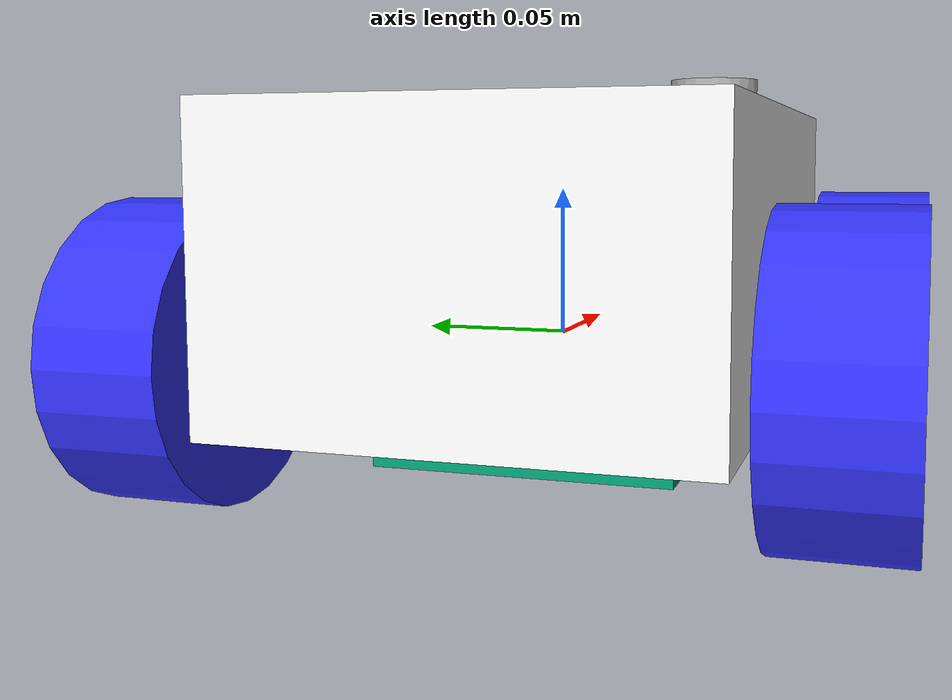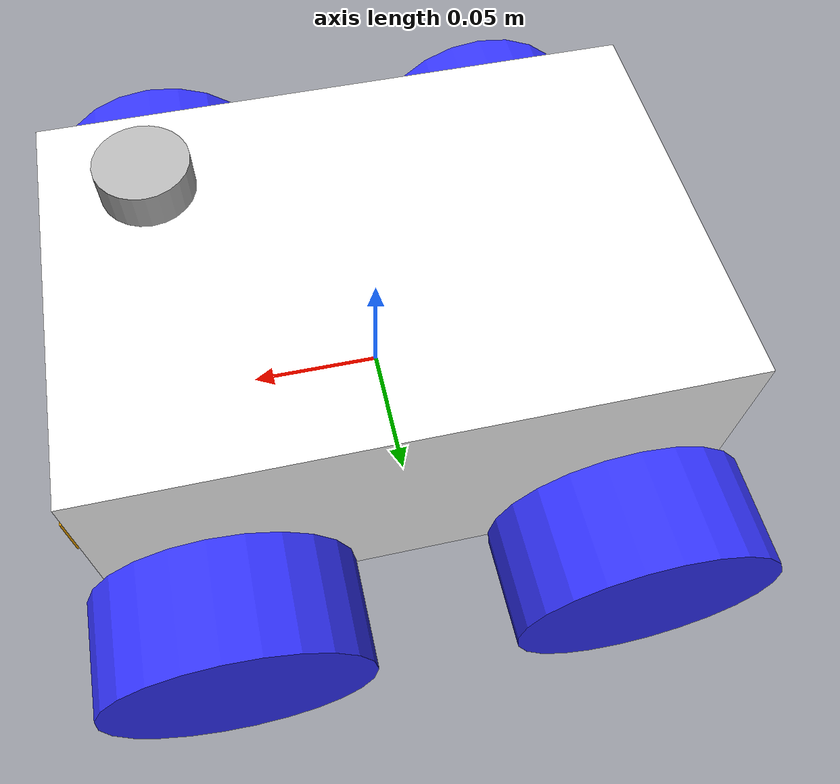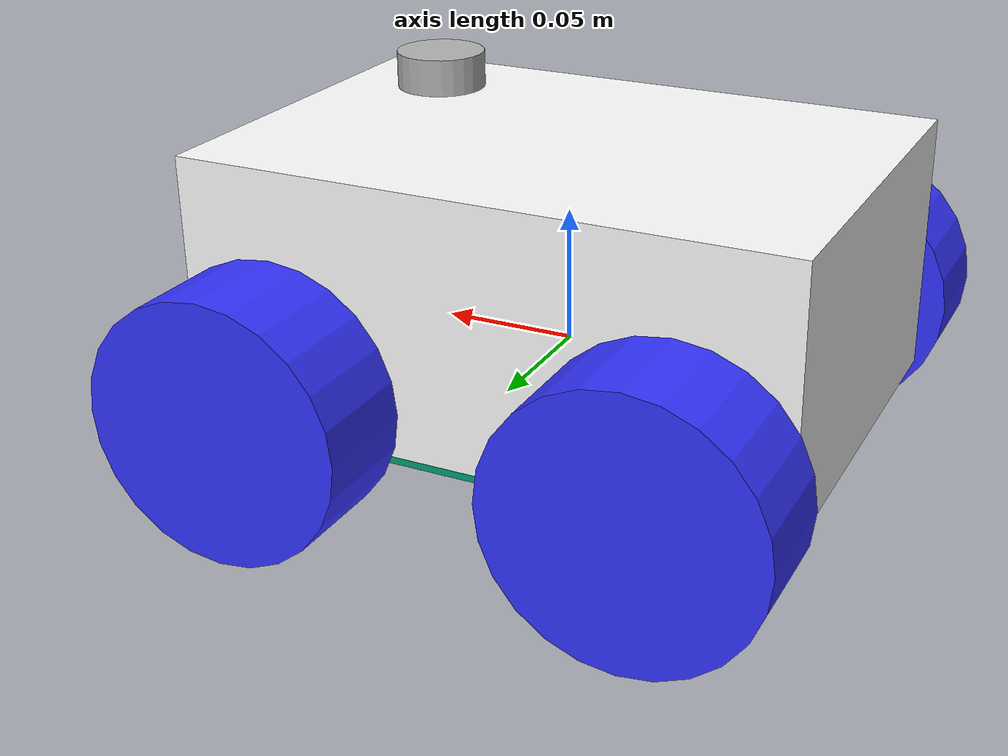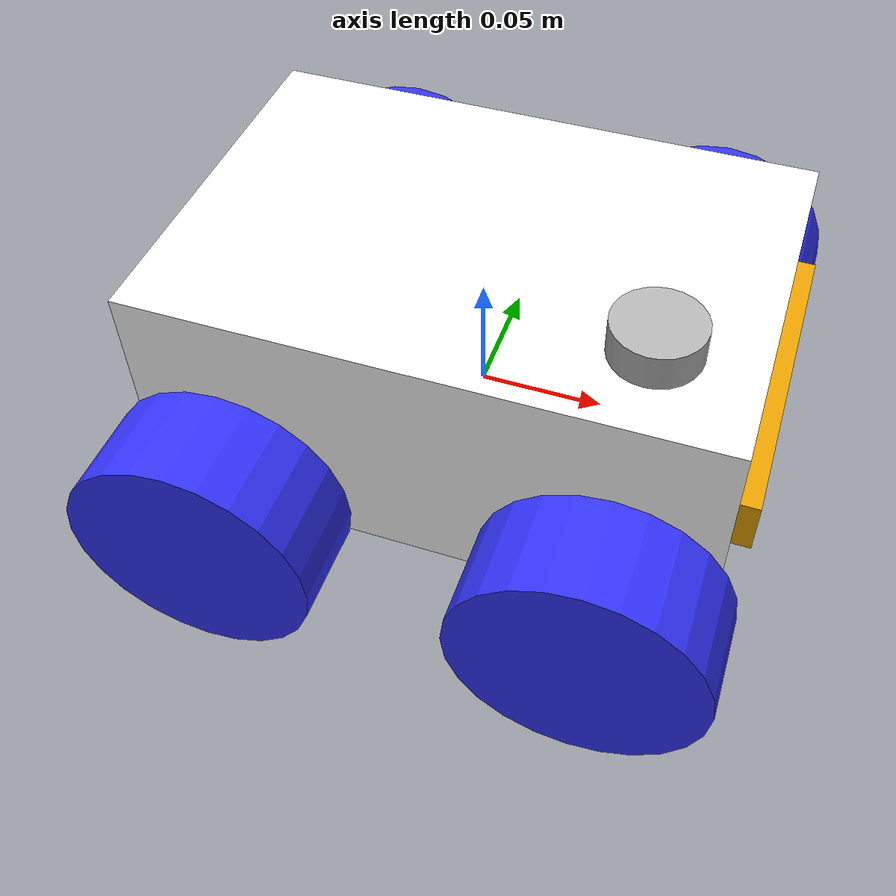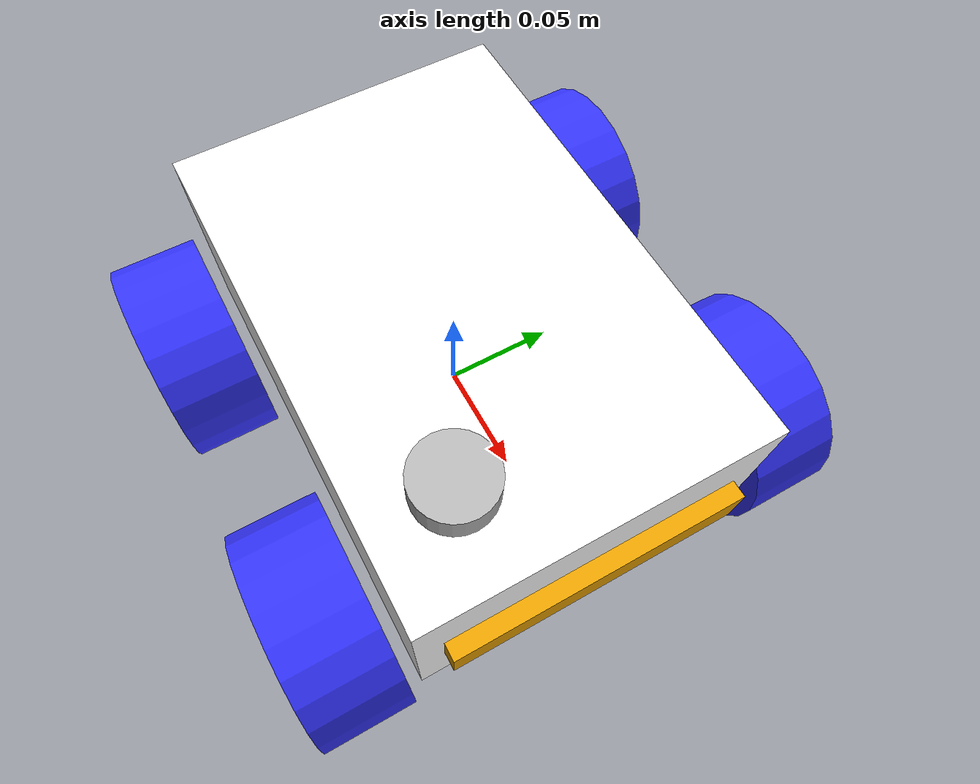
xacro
<?xml version="1.0"?>
<robot xmlns:xacro="http://www.ros.org/wiki/xacro"  name="crab_bot">

    <xacro:include filename="robot_core.xacro" />

    <xacro:arg name="use_ros2_control" default="false"/>
    <xacro:arg name="use_sim" default="true"/>

    <xacro:if value="$(arg use_ros2_control)">
        <xacro:if value="$(arg use_sim)">
            <xacro:include filename="ros2_control.simulation.xacro" />
        </xacro:if>
        <xacro:unless value="$(arg use_sim)">
            <xacro:include filename="ros2_control.hardware.xacro" />
        </xacro:unless>
    </xacro:if>

    <xacro:unless value="$(arg use_ros2_control)">
        <xacro:include filename="gazebo_control.xacro" />
    </xacro:unless>

    <xacro:include filename="lidar.xacro" />
    <xacro:include filename="dept_camera.xacro" />
    <xacro:include filename="imu.xacro" />

</robot>

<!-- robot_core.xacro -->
<robot xmlns:xacro="http://www.ros.org/wiki/xacro">

    <xacro:include filename="inertial_macros.xacro" />

    <xacro:property name="chassis_length" value="0.225"/>
    <xacro:property name="chassis_width" value="0.153"/>
    <xacro:property name="chassis_height" value="0.0975"/>
    <xacro:property name="chassis_mass" value="4.0"/>
    <xacro:property name="wheel_radius" value="0.048"/>
    <xacro:property name="wheel_thickness" value="0.04"/>
    <xacro:property name="wheel_mass" value="0.1"/>
    <xacro:property name="wheel_separation" value="0.205"/>
    <xacro:property name="wheel_offset_x" value="0.073"/>
    <xacro:property name="wheel_offset_y" value="${wheel_separation/2}"/>
    <xacro:property name="chassis_offset_z" value="0.02"/>

    <material name="white">
        <color rgba="1 1 1 1"/>
    </material>

    <material name="orange">
        <color rgba="1 0.3 0.1 1"/>
    </material>

    <material name="blue">
        <color rgba="0.2 0.2 1 1"/>
    </material>

    <material name="black">
        <color rgba="0 0 0 1"/>
    </material>

    <material name="red">
        <color rgba="1 0 0 1"/>
    </material>

    <!-- BASE LINK -->

    <link name="base_link">

    </link>

    <!-- BASE_FOOTPRINT LINK -->

    <joint name="base_footprint_joint" type="fixed">
        <parent link="base_link"/>
        <child link="base_footprint"/>
        <origin xyz="0 0 -0.048" rpy="0 0 0"/>
    </joint>

    <link name="base_footprint">
    </link>

    <!-- CHASSIS LINK -->

    <joint name="chassis_joint" type="fixed">
        <parent link="base_link"/>
        <child link="chassis"/>
        <origin xyz="0 0 ${-chassis_offset_z}"/>
    </joint>

    <link name="chassis">
        <!-- chassis visual -->
        <visual>
            <origin xyz="0 0 ${chassis_height/2}"/>
            <geometry>
                <box size="${chassis_length} ${chassis_width} ${chassis_height}"/>
            </geometry>
            <material name="white"/>
        </visual>
        <!-- chassis interact -->
        <collision>
            <origin xyz="0 0 ${chassis_height/2}"/>
            <geometry>
                <box size="${chassis_length} ${chassis_width} ${chassis_height}"/>
            </geometry>
        </collision>
        <!-- chassis phisical -->
        <xacro:inertial_box mass="${chassis_mass}" x="${chassis_length}" y="${chassis_width}" z="${chassis_height}">
            <origin xyz="0 0 ${chassis_height/2}" rpy="0 0 0"/>
        </xacro:inertial_box>
    </link>

    <gazebo reference="chassis">
        <material>Gazebo/White</material>
    </gazebo>

    <!-- REAR LEFT WHEEL LINK -->

    <joint name="rear_left_wheel_joint" type="continuous">
        <parent link="base_link"/>
        <child link="rear_left_wheel"/>
        <origin xyz="${-wheel_offset_x} ${wheel_offset_y} 0" rpy="0 0 0"/>
        <axis xyz="0 1 0" rpy="0 0 0"/>
    </joint>

    <link name="rear_left_wheel">
        <visual>
            <origin xyz="0 0 0" rpy="${pi/2} 0 0" />
            <geometry>
                <cylinder radius="${wheel_radius}" length="${wheel_thickness}"/>
            </geometry>
            <material name="blue"/>
        </visual>
        <collision>
            <origin xyz="0 0 0" rpy="${pi/2} 0 0" />
            <geometry>
                <cylinder radius="${wheel_radius}" length="${wheel_thickness/4}"/>
            </geometry>
        </collision>
        <xacro:inertial_cylinder mass="${wheel_mass}" length="${wheel_thickness}" radius="${wheel_radius}">
            <origin xyz="0 0 0" rpy="0 0 0"/>
        </xacro:inertial_cylinder>
    </link>

    <gazebo reference="rear_left_wheel">
        <material>Gazebo/Blue</material>
        <mu1 value="1.0"/>
        <mu2 value="0.1"/>
        <fdir1>1 0 0</fdir1>
    </gazebo>

    <!-- FRONT LEFT WHEEL LINK -->

    <joint name="front_left_wheel_joint" type="continuous">
        <parent link="base_link"/>
        <child link="front_left_wheel"/>
        <origin xyz="${wheel_offset_x} ${wheel_offset_y} 0" rpy="0 0 0"/>
        <axis xyz="0 1 0" rpy="0 0 0"/>
    </joint>

    <link name="front_left_wheel">
        <visual>
            <origin xyz="0 0 0" rpy="${pi/2} 0 0" />
            <geometry>
                <cylinder radius="${wheel_radius}" length="${wheel_thickness}"/>
            </geometry>
            <material name="blue"/>
        </visual>
        <collision>
            <origin xyz="0 0 0" rpy="${pi/2} 0 0" />
            <geometry>
                <cylinder radius="${wheel_radius}" length="${wheel_thickness/4}"/>
            </geometry>
        </collision>
        <xacro:inertial_cylinder mass="${wheel_mass}" length="${wheel_thickness}" radius="${wheel_radius}">
            <origin xyz="0 0 0" rpy="0 0 0"/>
        </xacro:inertial_cylinder>
    </link>

    <gazebo reference="front_left_wheel">
        <material>Gazebo/Blue</material>
        <mu1 value="1.0"/>
        <mu2 value="0.1"/>
        <fdir1>1 0 0</fdir1>
    </gazebo>

    <!-- REAR RIGHT WHEEL LINK -->

    <joint name="rear_right_wheel_joint" type="continuous">
        <parent link="base_link"/>
        <child link="rear_right_wheel"/>
        <origin xyz="${-wheel_offset_x} ${-wheel_offset_y} 0" rpy="0 0 0"/>
        <axis xyz="0 1 0" rpy="0 0 0"/>
    </joint>

    <link name="rear_right_wheel">
        <visual>
            <origin xyz="0 0 0" rpy="${pi/2} 0 0" />
            <geometry>
                <cylinder radius="${wheel_radius}" length="${wheel_thickness}"/>
            </geometry>
            <material name="blue"/>
        </visual>
        <collision>
            <origin xyz="0 0 0" rpy="${pi/2} 0 0" />
            <geometry>
                <cylinder radius="${wheel_radius}" length="${wheel_thickness/4}"/>
            </geometry>
        </collision>
        <xacro:inertial_cylinder mass="${wheel_mass}" length="${wheel_thickness}" radius="${wheel_radius}">
            <origin xyz="0 0 0" rpy="0 0 0"/>
        </xacro:inertial_cylinder>
    </link>

    <gazebo reference="rear_right_wheel">
        <material>Gazebo/Blue</material>
        <mu1 value="1.0"/>
        <mu2 value="0.1"/>
        <fdir1>1 0 0</fdir1>
    </gazebo>

    <!-- FRONT RIGHT WHEEL LINK -->

    <joint name="front_right_wheel_joint" type="continuous">
        <parent link="base_link"/>
        <child link="front_right_wheel"/>
        <origin xyz="${wheel_offset_x} ${-wheel_offset_y} 0" rpy="0 0 0"/>
        <axis xyz="0 1 0" rpy="0 0 0"/>
    </joint>

    <link name="front_right_wheel">
        <visual>
            <origin xyz="0 0 0" rpy="${pi/2} 0 0" />
            <geometry>
                <cylinder radius="${wheel_radius}" length="${wheel_thickness}"/>
            </geometry>
            <material name="blue"/>
        </visual>
        <collision>
            <origin xyz="0 0 0" rpy="${pi/2} 0 0" />
            <geometry>
                <cylinder radius="${wheel_radius}" length="${wheel_thickness/4}"/>
            </geometry>
        </collision>
        <xacro:inertial_cylinder mass="${wheel_mass}" length="${wheel_thickness}" radius="${wheel_radius}">
            <origin xyz="0 0 0" rpy="0 0 0"/>
        </xacro:inertial_cylinder>
    </link>

    <gazebo reference="front_right_wheel">
        <material>Gazebo/Blue</material>
        <mu1 value="1.0"/>
        <mu2 value="0.1"/>
        <fdir1>1 0 0</fdir1>
    </gazebo>

</robot>

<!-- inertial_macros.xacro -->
<robot xmlns:xacro="http://www.ros.org/wiki/xacro" >

    <!-- Specify some standard inertial calculations https://en.wikipedia.org/wiki/List_of_moments_of_inertia -->
    <!-- These make use of xacro's mathematical functionality -->

    <xacro:macro name="inertial_sphere" params="mass radius *origin">
        <inertial>
            <xacro:insert_block name="origin"/>
            <mass value="${mass}" />
            <inertia ixx="${(2/5) * mass * (radius*radius)}" ixy="0.0" ixz="0.0"
                    iyy="${(2/5) * mass * (radius*radius)}" iyz="0.0"
                    izz="${(2/5) * mass * (radius*radius)}" />
        </inertial>
    </xacro:macro>

    <xacro:macro name="inertial_box" params="mass x y z *origin">
        <inertial>
            <xacro:insert_block name="origin"/>
            <mass value="${mass}" />
            <inertia ixx="${(1/12) * mass * (y*y+z*z)}" ixy="0.0" ixz="0.0"
                    iyy="${(1/12) * mass * (x*x+z*z)}" iyz="0.0"
                    izz="${(1/12) * mass * (x*x+y*y)}" />
        </inertial>
    </xacro:macro>

    <xacro:macro name="inertial_cylinder" params="mass length radius *origin">
        <inertial>
            <xacro:insert_block name="origin"/>
            <mass value="${mass}" />
            <inertia ixx="${(1/12) * mass * (3*radius*radius + length*length)}" ixy="0.0" ixz="0.0"
                    iyy="${(1/12) * mass * (radius*radius + length*length)}" iyz="0.0"
                    izz="${(1/12) * mass * (radius*radius)}" />
        </inertial>
    </xacro:macro>

</robot>

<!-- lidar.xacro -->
<robot xmlns:xacro="http://www.ros.org/wiki/xacro">

    <!-- Lidar link -->

    <link name="lidar_link">
        <inertial>
            <origin xyz="0 0 0" rpy="0 0 0"/>
            <mass value="0.125"/>
            <inertia ixx="0.001"  ixy="0"  ixz="0" iyy="0.001" iyz="0" izz="0.001" />
        </inertial>

        <collision>
            <origin xyz="0 0 0" rpy="0 0 0"/>
            <geometry>
                <cylinder radius="0.017" length="0.014"/>
            </geometry>
        </collision>

        <visual>
            <origin xyz="0 0 0" rpy="0 0 0"/>
            <geometry>
                <cylinder radius="0.017" length="0.014"/>
            </geometry>
        </visual>
    </link>

    <!-- Lidar Joint -->

    <joint name="lidar_joint" type="fixed">
        <parent link="base_link"/>
        <child link="lidar_link"/>
        <origin xyz="0.074 -0.04 0.0845" rpy="0 0 0"/>
    </joint>

    <!-- Gazebo Plugin -->

    <gazebo reference="lidar_link">
        <sensor name="lidar" type="ray">
            <always_on>true</always_on>
            <visualize>false</visualize>
            <update_rate>5</update_rate>
            <ray>
                <scan>
                    <horizontal>
                    <samples>360</samples>
                    <resolution>1.000000</resolution>
                    <min_angle>0.000000</min_angle>
                    <max_angle>6.280000</max_angle>
                    </horizontal>
                </scan>
                <range>
                    <min>0.30000</min>
                    <max>12.0</max>
                    <resolution>0.01</resolution>
                </range>
                <noise>
                    <type>gaussian</type>
                    <mean>0.0</mean>
                    <stddev>0.01</stddev>
                </noise>
            </ray>
            <plugin name="scan" filename="libgazebo_ros_ray_sensor.so">
                <ros>
                    <remapping>~/out:=scan</remapping>
                </ros>
                <output_type>sensor_msgs/LaserScan</output_type>
                <frame_name>lidar_link</frame_name>
            </plugin>
        </sensor>
    </gazebo>

</robot>

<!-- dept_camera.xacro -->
<robot xmlns:xacro="http://www.ros.org/wiki/xacro" >

    <!-- Camera Link -->

    <link name="camera_link">
        <visual>
            <origin xyz="0 0 0" rpy="0 0 0"/>
            <geometry>
            <box size="0.015 0.130 0.022"/>
            </geometry>
        </visual>

        <collision>
            <origin xyz="0 0 0" rpy="0 0 0"/>
            <geometry>
            <box size="0.015 0.130 0.022"/>
            </geometry>
        </collision>

        <inertial>
            <origin xyz="0 0 0" rpy="0 0 0"/>
            <mass value="0.035"/>
            <inertia ixx="0.001"  ixy="0"  ixz="0" iyy="0.001" iyz="0" izz="0.001" />
        </inertial>
    </link>

    <!-- Camera Joint -->

    <joint name="camera_joint" type="fixed">
        <parent link="base_link"/>
        <child link="camera_link"/>
        <origin xyz="0.1125 0.0 0.03" rpy="0 0 0"/>
    </joint>

    <!-- Camera depth link -->

    <link name="camera_depth_frame"/>

    <joint name="camera_depth_joint" type="fixed">
        <origin xyz="0 0 0" rpy="${-pi/2} 0 ${-pi/2}"/>
        <parent link="camera_link"/>
        <child link="camera_depth_frame"/>
    </joint>

    <!-- Gazebo Plugin -->

    <gazebo reference="camera_link">
        <sensor name="depth_camera" type="depth">
            <visualize>true</visualize>
            <update_rate>30.0</update_rate>
            <camera name="camera">
                <horizontal_fov>1.047198</horizontal_fov>
                <image>
                    <width>640</width>
                    <height>480</height>
                    <format>R8G8B8</format>
                </image>
                <clip>
                    <near>0.05</near>
                    <far>3</far>
                </clip>
            </camera>
            <plugin name="depth_camera_controller" filename="libgazebo_ros_camera.so">
                <baseline>0.2</baseline>
                <alwaysOn>true</alwaysOn>
                <updateRate>0.0</updateRate>
                <frame_name>camera_depth_frame</frame_name>
                <pointCloudCutoff>0.5</pointCloudCutoff>
                <pointCloudCutoffMax>3.0</pointCloudCutoffMax>
                <distortionK1>0</distortionK1>
                <distortionK2>0</distortionK2>
                <distortionK3>0</distortionK3>
                <distortionT1>0</distortionT1>
                <distortionT2>0</distortionT2>
                <CxPrime>0</CxPrime>
                <Cx>0</Cx>
                <Cy>0</Cy>
                <focalLength>0</focalLength>
                <hackBaseline>0</hackBaseline>
            </plugin>
        </sensor>
    </gazebo>

</robot>

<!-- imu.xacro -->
<robot xmlns:xacro="http://www.ros.org/wiki/xacro" >

    <xacro:include filename="inertial_macros.xacro" />

    <!-- imu link -->

    <link name="imu_link">
        <visual>
            <geometry>
                <box size="0.1 0.1 0.1"/>
            </geometry>
        </visual>

        <collision>
            <geometry>
                <box size="0.1 0.1 0.1"/>
            </geometry>
        </collision>

    </link>

    <!-- imu joint -->

    <joint name="imu_joint" type="fixed">
        <parent link="base_link"/>
        <child link="imu_link"/>
        <origin xyz="0 0 0.01"/>
    </joint>

    <gazebo reference="imu_link">
        <sensor name="imu_sensor" type="imu">
            <plugin filename="libgazebo_ros_imu_sensor.so" name="imu_plugin">
                <ros>
                    <namespace>/demo</namespace>
                    <remapping>~/out:=imu</remapping>
                </ros>
                <initial_orientation_as_reference>false</initial_orientation_as_reference>
            </plugin>
            <always_on>true</always_on>
            <update_rate>100</update_rate>
            <visualize>true</visualize>
            <imu>
                <angular_velocity>
                    <x>
                        <noise type="gaussian">
                            <mean>0.0</mean>
                            <stddev>2e-4</stddev>
                            <bias_mean>0.0000075</bias_mean>
                            <bias_stddev>0.0000008</bias_stddev>
                        </noise>
                    </x>
                    <y>
                        <noise type="gaussian">
                            <mean>0.0</mean>
                            <stddev>2e-4</stddev>
                            <bias_mean>0.0000075</bias_mean>
                            <bias_stddev>0.0000008</bias_stddev>
                        </noise>
                    </y>
                    <z>
                        <noise type="gaussian">
                            <mean>0.0</mean>
                            <stddev>2e-4</stddev>
                            <bias_mean>0.0000075</bias_mean>
                            <bias_stddev>0.0000008</bias_stddev>
                        </noise>
                    </z>
                </angular_velocity>
                <linear_acceleration>
                    <x>
                        <noise type="gaussian">
                            <mean>0.0</mean>
                            <stddev>1.7e-2</stddev>
                            <bias_mean>0.1</bias_mean>
                            <bias_stddev>0.001</bias_stddev>
                        </noise>
                    </x>
                    <y>
                        <noise type="gaussian">
                            <mean>0.0</mean>
                            <stddev>1.7e-2</stddev>
                            <bias_mean>0.1</bias_mean>
                            <bias_stddev>0.001</bias_stddev>
                        </noise>
                    </y>
                    <z>
                        <noise type="gaussian">
                            <mean>0.0</mean>
                            <stddev>1.7e-2</stddev>
                            <bias_mean>0.1</bias_mean>
                            <bias_stddev>0.001</bias_stddev>
                        </noise>
                    </z>
                </linear_acceleration>
            </imu>
        </sensor>
    </gazebo>

</robot>
